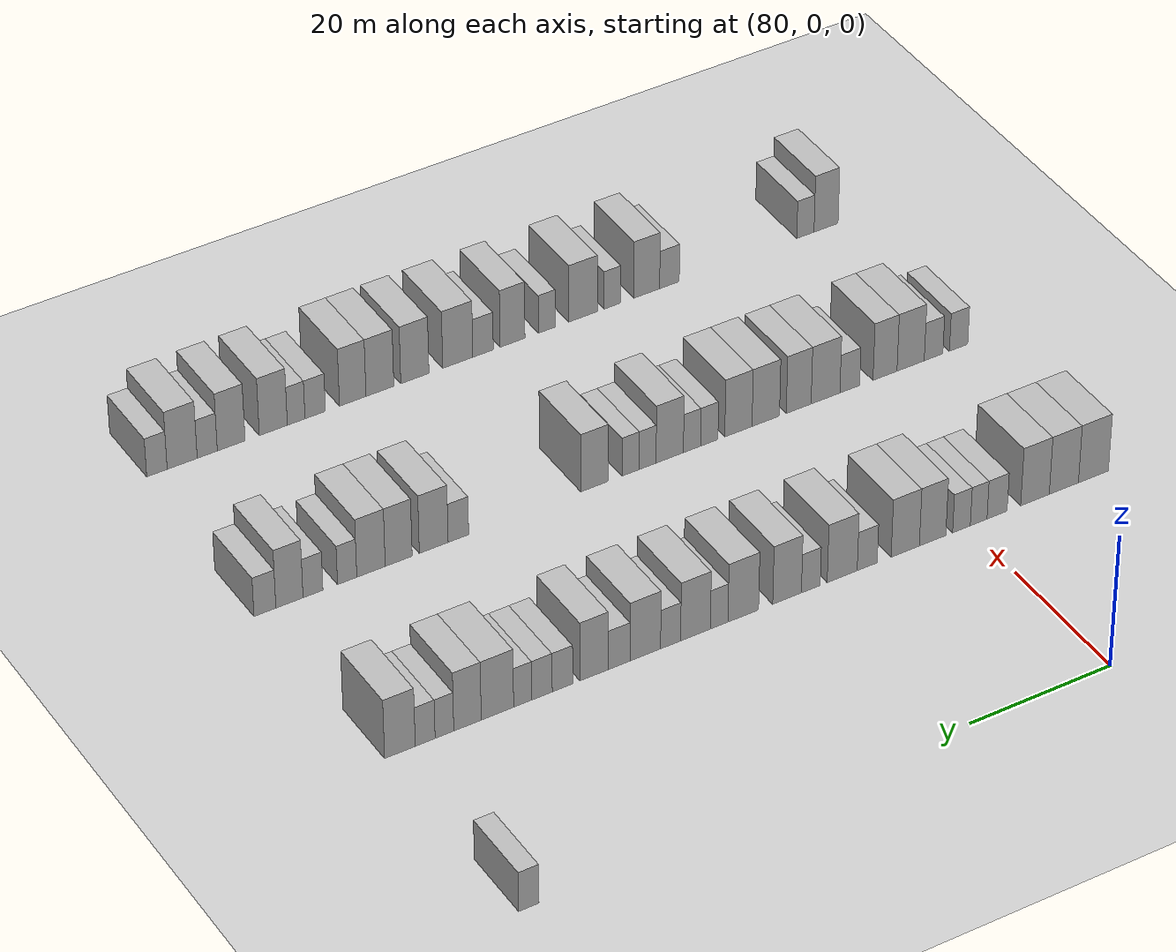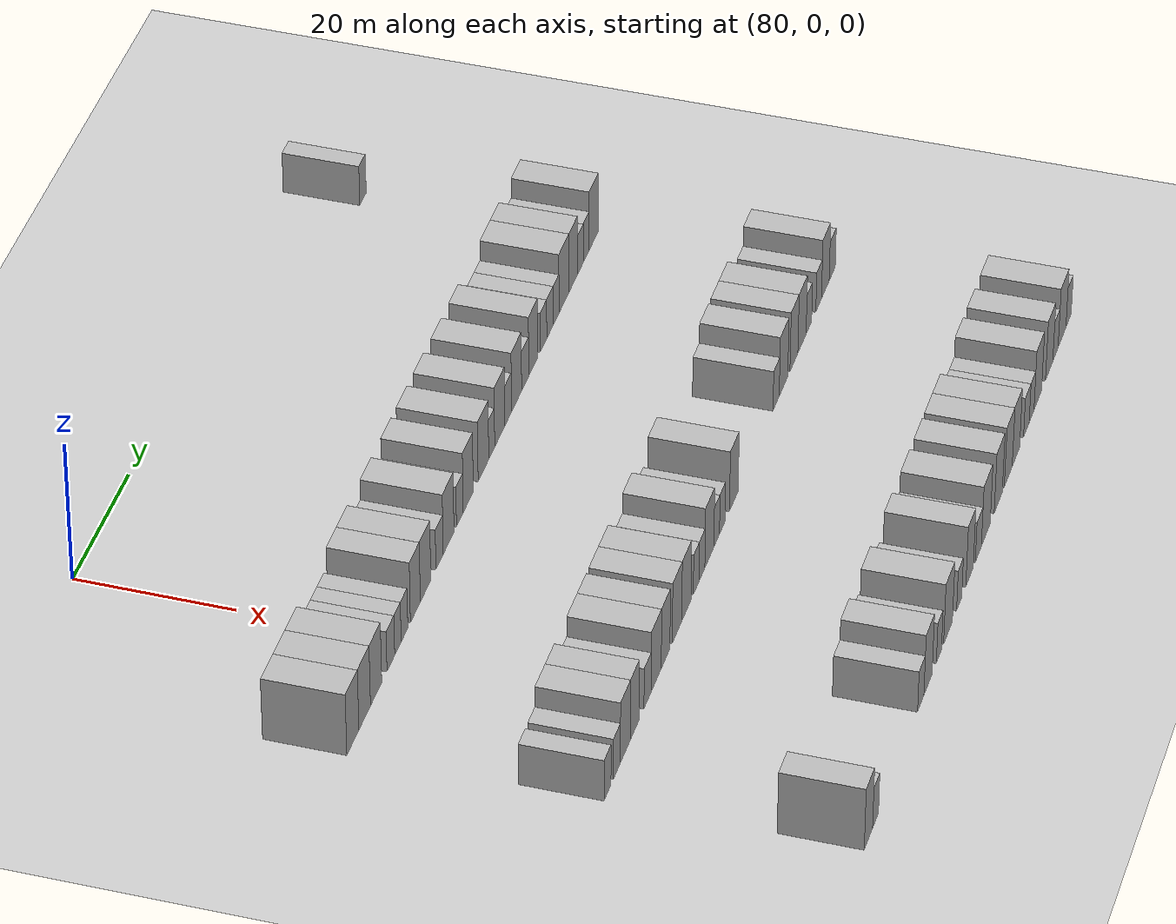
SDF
<sdf version="1.6">
 <world name="default">
  <include>
   <name>ground_plane_2</name>
   <uri>model://HANNAS_ground_plane</uri>
   <pose>100 0 0  0 0 0</pose>
  </include>
  <model name="building_577">
   <static>1</static>
   <pose>85.0000 79.6318 0 0.000000 0.000000 0.000000</pose>
   <link name="link">
    <pose>0 0 3.00 0 0 0</pose>
    <collision name="collision"><geometry><box><size>10.0000 2.6486 6.0000</size></box></geometry></collision>
    <visual name="visual">
     <cast_shadows>0</cast_shadows>
     <geometry><box><size>10.0000 2.6486 6.0000</size></box></geometry>
     <material>
      <script>
       <uri>model://HANNAS_wall/materials/scripts</uri>
       <uri>model://HANNAS_wall/materials/textures</uri>
       <name>vrc/HANNAS_wall</name>
      </script>
     </material>
    </visual>
   </link>
  </model>
  <model name="building_785">
   <static>1</static>
   <pose>115.0000 -18.4656 0 0.000000 0.000000 0.000000</pose>
   <link name="link">
    <pose>0 0 4.50 0 0 0</pose>
    <collision name="collision"><geometry><box><size>10.0000 4.4805 9.0000</size></box></geometry></collision>
    <visual name="visual">
     <cast_shadows>0</cast_shadows>
     <geometry><box><size>10.0000 4.4805 9.0000</size></box></geometry>
     <material>
      <script>
       <uri>model://HANNAS_wall/materials/scripts</uri>
       <uri>model://HANNAS_wall/materials/textures</uri>
       <name>vrc/HANNAS_wall</name>
      </script>
     </material>
    </visual>
   </link>
  </model>
  <model name="building_786">
   <static>1</static>
   <pose>115.0000 -14.0532 0 0.000000 0.000000 0.000000</pose>
   <link name="link">
    <pose>0 0 4.50 0 0 0</pose>
    <collision name="collision"><geometry><box><size>10.0000 4.3443 9.0000</size></box></geometry></collision>
    <visual name="visual">
     <cast_shadows>0</cast_shadows>
     <geometry><box><size>10.0000 4.3443 9.0000</size></box></geometry>
     <material>
      <script>
       <uri>model://HANNAS_wall/materials/scripts</uri>
       <uri>model://HANNAS_wall/materials/textures</uri>
       <name>vrc/HANNAS_wall</name>
      </script>
     </material>
    </visual>
   </link>
  </model>
  <model name="building_787">
   <static>1</static>
   <pose>115.0000 -9.7613 0 0.000000 0.000000 0.000000</pose>
   <link name="link">
    <pose>0 0 4.50 0 0 0</pose>
    <collision name="collision"><geometry><box><size>10.0000 4.2395 9.0000</size></box></geometry></collision>
    <visual name="visual">
     <cast_shadows>0</cast_shadows>
     <geometry><box><size>10.0000 4.2395 9.0000</size></box></geometry>
     <material>
      <script>
       <uri>model://HANNAS_wall/materials/scripts</uri>
       <uri>model://HANNAS_wall/materials/textures</uri>
       <name>vrc/HANNAS_wall</name>
      </script>
     </material>
    </visual>
   </link>
  </model>
  <model name="building_788">
   <static>1</static>
   <pose>115.0000 -4.1615 0 0.000000 0.000000 0.000000</pose>
   <link name="link">
    <pose>0 0 3.00 0 0 0</pose>
    <collision name="collision"><geometry><box><size>10.0000 2.9599 6.0000</size></box></geometry></collision>
    <visual name="visual">
     <cast_shadows>0</cast_shadows>
     <geometry><box><size>10.0000 2.9599 6.0000</size></box></geometry>
     <material>
      <script>
       <uri>model://HANNAS_wall/materials/scripts</uri>
       <uri>model://HANNAS_wall/materials/textures</uri>
       <name>vrc/HANNAS_wall</name>
      </script>
     </material>
    </visual>
   </link>
  </model>
  <model name="building_789">
   <static>1</static>
   <pose>115.0000 -1.4543 0 0.000000 0.000000 0.000000</pose>
   <link name="link">
    <pose>0 0 3.00 0 0 0</pose>
    <collision name="collision"><geometry><box><size>10.0000 2.4546 6.0000</size></box></geometry></collision>
    <visual name="visual">
     <cast_shadows>0</cast_shadows>
     <geometry><box><size>10.0000 2.4546 6.0000</size></box></geometry>
     <material>
      <script>
       <uri>model://HANNAS_wall/materials/scripts</uri>
       <uri>model://HANNAS_wall/materials/textures</uri>
       <name>vrc/HANNAS_wall</name>
      </script>
     </material>
    </visual>
   </link>
  </model>
  <model name="building_790">
   <static>1</static>
   <pose>115.0000 1.0651 0 0.000000 0.000000 0.000000</pose>
   <link name="link">
    <pose>0 0 3.00 0 0 0</pose>
    <collision name="collision"><geometry><box><size>10.0000 2.5842 6.0000</size></box></geometry></collision>
    <visual name="visual">
     <cast_shadows>0</cast_shadows>
     <geometry><box><size>10.0000 2.5842 6.0000</size></box></geometry>
     <material>
      <script>
       <uri>model://HANNAS_wall/materials/scripts</uri>
       <uri>model://HANNAS_wall/materials/textures</uri>
       <name>vrc/HANNAS_wall</name>
      </script>
     </material>
    </visual>
   </link>
  </model>
  <model name="building_791">
   <static>1</static>
   <pose>115.0000 5.2829 0 0.000000 0.000000 0.000000</pose>
   <link name="link">
    <pose>0 0 4.50 0 0 0</pose>
    <collision name="collision"><geometry><box><size>10.0000 3.8512 9.0000</size></box></geometry></collision>
    <visual name="visual">
     <cast_shadows>0</cast_shadows>
     <geometry><box><size>10.0000 3.8512 9.0000</size></box></geometry>
     <material>
      <script>
       <uri>model://HANNAS_wall/materials/scripts</uri>
       <uri>model://HANNAS_wall/materials/textures</uri>
       <name>vrc/HANNAS_wall</name>
      </script>
     </material>
    </visual>
   </link>
  </model>
  <model name="building_792">
   <static>1</static>
   <pose>115.0000 9.2549 0 0.000000 0.000000 0.000000</pose>
   <link name="link">
    <pose>0 0 4.50 0 0 0</pose>
    <collision name="collision"><geometry><box><size>10.0000 4.0929 9.0000</size></box></geometry></collision>
    <visual name="visual">
     <cast_shadows>0</cast_shadows>
     <geometry><box><size>10.0000 4.0929 9.0000</size></box></geometry>
     <material>
      <script>
       <uri>model://HANNAS_wall/materials/scripts</uri>
       <uri>model://HANNAS_wall/materials/textures</uri>
       <name>vrc/HANNAS_wall</name>
      </script>
     </material>
    </visual>
   </link>
  </model>
  <model name="building_793">
   <static>1</static>
   <pose>115.0000 14.7451 0 0.000000 0.000000 0.000000</pose>
   <link name="link">
    <pose>0 0 3.00 0 0 0</pose>
    <collision name="collision"><geometry><box><size>10.0000 2.8875 6.0000</size></box></geometry></collision>
    <visual name="visual">
     <cast_shadows>0</cast_shadows>
     <geometry><box><size>10.0000 2.8875 6.0000</size></box></geometry>
     <material>
      <script>
       <uri>model://HANNAS_wall/materials/scripts</uri>
       <uri>model://HANNAS_wall/materials/textures</uri>
       <name>vrc/HANNAS_wall</name>
      </script>
     </material>
    </visual>
   </link>
  </model>
  <model name="building_794">
   <static>1</static>
   <pose>115.0000 18.3385 0 0.000000 0.000000 0.000000</pose>
   <link name="link">
    <pose>0 0 4.50 0 0 0</pose>
    <collision name="collision"><geometry><box><size>10.0000 4.2994 9.0000</size></box></geometry></collision>
    <visual name="visual">
     <cast_shadows>0</cast_shadows>
     <geometry><box><size>10.0000 4.2994 9.0000</size></box></geometry>
     <material>
      <script>
       <uri>model://HANNAS_wall/materials/scripts</uri>
       <uri>model://HANNAS_wall/materials/textures</uri>
       <name>vrc/HANNAS_wall</name>
      </script>
     </material>
    </visual>
   </link>
  </model>
  <model name="building_795">
   <static>1</static>
   <pose>115.0000 22.8288 0 0.000000 0.000000 0.000000</pose>
   <link name="link">
    <pose>0 0 3.00 0 0 0</pose>
    <collision name="collision"><geometry><box><size>10.0000 2.6811 6.0000</size></box></geometry></collision>
    <visual name="visual">
     <cast_shadows>0</cast_shadows>
     <geometry><box><size>10.0000 2.6811 6.0000</size></box></geometry>
     <material>
      <script>
       <uri>model://HANNAS_wall/materials/scripts</uri>
       <uri>model://HANNAS_wall/materials/textures</uri>
       <name>vrc/HANNAS_wall</name>
      </script>
     </material>
    </visual>
   </link>
  </model>
  <model name="building_796">
   <static>1</static>
   <pose>115.0000 26.2020 0 0.000000 0.000000 0.000000</pose>
   <link name="link">
    <pose>0 0 4.50 0 0 0</pose>
    <collision name="collision"><geometry><box><size>10.0000 4.0654 9.0000</size></box></geometry></collision>
    <visual name="visual">
     <cast_shadows>0</cast_shadows>
     <geometry><box><size>10.0000 4.0654 9.0000</size></box></geometry>
     <material>
      <script>
       <uri>model://HANNAS_wall/materials/scripts</uri>
       <uri>model://HANNAS_wall/materials/textures</uri>
       <name>vrc/HANNAS_wall</name>
      </script>
     </material>
    </visual>
   </link>
  </model>
  <model name="building_797">
   <static>1</static>
   <pose>115.0000 32.3905 0 0.000000 0.000000 0.000000</pose>
   <link name="link">
    <pose>0 0 4.50 0 0 0</pose>
    <collision name="collision"><geometry><box><size>10.0000 4.3115 9.0000</size></box></geometry></collision>
    <visual name="visual">
     <cast_shadows>0</cast_shadows>
     <geometry><box><size>10.0000 4.3115 9.0000</size></box></geometry>
     <material>
      <script>
       <uri>model://HANNAS_wall/materials/scripts</uri>
       <uri>model://HANNAS_wall/materials/textures</uri>
       <name>vrc/HANNAS_wall</name>
      </script>
     </material>
    </visual>
   </link>
  </model>
  <model name="building_798">
   <static>1</static>
   <pose>115.0000 35.7782 0 0.000000 0.000000 0.000000</pose>
   <link name="link">
    <pose>0 0 3.00 0 0 0</pose>
    <collision name="collision"><geometry><box><size>10.0000 2.4639 6.0000</size></box></geometry></collision>
    <visual name="visual">
     <cast_shadows>0</cast_shadows>
     <geometry><box><size>10.0000 2.4639 6.0000</size></box></geometry>
     <material>
      <script>
       <uri>model://HANNAS_wall/materials/scripts</uri>
       <uri>model://HANNAS_wall/materials/textures</uri>
       <name>vrc/HANNAS_wall</name>
      </script>
     </material>
    </visual>
   </link>
  </model>
  <model name="building_799">
   <static>1</static>
   <pose>115.0000 39.0899 0 0.000000 0.000000 0.000000</pose>
   <link name="link">
    <pose>0 0 4.50 0 0 0</pose>
    <collision name="collision"><geometry><box><size>10.0000 4.1594 9.0000</size></box></geometry></collision>
    <visual name="visual">
     <cast_shadows>0</cast_shadows>
     <geometry><box><size>10.0000 4.1594 9.0000</size></box></geometry>
     <material>
      <script>
       <uri>model://HANNAS_wall/materials/scripts</uri>
       <uri>model://HANNAS_wall/materials/textures</uri>
       <name>vrc/HANNAS_wall</name>
      </script>
     </material>
    </visual>
   </link>
  </model>
  <model name="building_800">
   <static>1</static>
   <pose>115.0000 42.5646 0 0.000000 0.000000 0.000000</pose>
   <link name="link">
    <pose>0 0 3.00 0 0 0</pose>
    <collision name="collision"><geometry><box><size>10.0000 2.7901 6.0000</size></box></geometry></collision>
    <visual name="visual">
     <cast_shadows>0</cast_shadows>
     <geometry><box><size>10.0000 2.7901 6.0000</size></box></geometry>
     <material>
      <script>
       <uri>model://HANNAS_wall/materials/scripts</uri>
       <uri>model://HANNAS_wall/materials/textures</uri>
       <name>vrc/HANNAS_wall</name>
      </script>
     </material>
    </visual>
   </link>
  </model>
  <model name="building_801">
   <static>1</static>
   <pose>115.0000 46.0817 0 0.000000 0.000000 0.000000</pose>
   <link name="link">
    <pose>0 0 4.50 0 0 0</pose>
    <collision name="collision"><geometry><box><size>10.0000 4.2441 9.0000</size></box></geometry></collision>
    <visual name="visual">
     <cast_shadows>0</cast_shadows>
     <geometry><box><size>10.0000 4.2441 9.0000</size></box></geometry>
     <material>
      <script>
       <uri>model://HANNAS_wall/materials/scripts</uri>
       <uri>model://HANNAS_wall/materials/textures</uri>
       <name>vrc/HANNAS_wall</name>
      </script>
     </material>
    </visual>
   </link>
  </model>
  <model name="building_802">
   <static>1</static>
   <pose>115.0000 49.7013 0 0.000000 0.000000 0.000000</pose>
   <link name="link">
    <pose>0 0 3.00 0 0 0</pose>
    <collision name="collision"><geometry><box><size>10.0000 2.9952 6.0000</size></box></geometry></collision>
    <visual name="visual">
     <cast_shadows>0</cast_shadows>
     <geometry><box><size>10.0000 2.9952 6.0000</size></box></geometry>
     <material>
      <script>
       <uri>model://HANNAS_wall/materials/scripts</uri>
       <uri>model://HANNAS_wall/materials/textures</uri>
       <name>vrc/HANNAS_wall</name>
      </script>
     </material>
    </visual>
   </link>
  </model>
  <model name="building_803">
   <static>1</static>
   <pose>115.0000 53.1401 0 0.000000 0.000000 0.000000</pose>
   <link name="link">
    <pose>0 0 4.50 0 0 0</pose>
    <collision name="collision"><geometry><box><size>10.0000 3.8824 9.0000</size></box></geometry></collision>
    <visual name="visual">
     <cast_shadows>0</cast_shadows>
     <geometry><box><size>10.0000 3.8824 9.0000</size></box></geometry>
     <material>
      <script>
       <uri>model://HANNAS_wall/materials/scripts</uri>
       <uri>model://HANNAS_wall/materials/textures</uri>
       <name>vrc/HANNAS_wall</name>
      </script>
     </material>
    </visual>
   </link>
  </model>
  <model name="building_804">
   <static>1</static>
   <pose>115.0000 57.4782 0 0.000000 0.000000 0.000000</pose>
   <link name="link">
    <pose>0 0 3.00 0 0 0</pose>
    <collision name="collision"><geometry><box><size>10.0000 2.7938 6.0000</size></box></geometry></collision>
    <visual name="visual">
     <cast_shadows>0</cast_shadows>
     <geometry><box><size>10.0000 2.7938 6.0000</size></box></geometry>
     <material>
      <script>
       <uri>model://HANNAS_wall/materials/scripts</uri>
       <uri>model://HANNAS_wall/materials/textures</uri>
       <name>vrc/HANNAS_wall</name>
      </script>
     </material>
    </visual>
   </link>
  </model>
  <model name="building_805">
   <static>1</static>
   <pose>115.0000 60.2609 0 0.000000 0.000000 0.000000</pose>
   <link name="link">
    <pose>0 0 3.00 0 0 0</pose>
    <collision name="collision"><geometry><box><size>10.0000 2.7716 6.0000</size></box></geometry></collision>
    <visual name="visual">
     <cast_shadows>0</cast_shadows>
     <geometry><box><size>10.0000 2.7716 6.0000</size></box></geometry>
     <material>
      <script>
       <uri>model://HANNAS_wall/materials/scripts</uri>
       <uri>model://HANNAS_wall/materials/textures</uri>
       <name>vrc/HANNAS_wall</name>
      </script>
     </material>
    </visual>
   </link>
  </model>
  <model name="building_806">
   <static>1</static>
   <pose>115.0000 62.8875 0 0.000000 0.000000 0.000000</pose>
   <link name="link">
    <pose>0 0 3.00 0 0 0</pose>
    <collision name="collision"><geometry><box><size>10.0000 2.4816 6.0000</size></box></geometry></collision>
    <visual name="visual">
     <cast_shadows>0</cast_shadows>
     <geometry><box><size>10.0000 2.4816 6.0000</size></box></geometry>
     <material>
      <script>
       <uri>model://HANNAS_wall/materials/scripts</uri>
       <uri>model://HANNAS_wall/materials/textures</uri>
       <name>vrc/HANNAS_wall</name>
      </script>
     </material>
    </visual>
   </link>
  </model>
  <model name="building_807">
   <static>1</static>
   <pose>115.0000 66.3173 0 0.000000 0.000000 0.000000</pose>
   <link name="link">
    <pose>0 0 4.50 0 0 0</pose>
    <collision name="collision"><geometry><box><size>10.0000 4.3781 9.0000</size></box></geometry></collision>
    <visual name="visual">
     <cast_shadows>0</cast_shadows>
     <geometry><box><size>10.0000 4.3781 9.0000</size></box></geometry>
     <material>
      <script>
       <uri>model://HANNAS_wall/materials/scripts</uri>
       <uri>model://HANNAS_wall/materials/textures</uri>
       <name>vrc/HANNAS_wall</name>
      </script>
     </material>
    </visual>
   </link>
  </model>
  <model name="building_808">
   <static>1</static>
   <pose>115.0000 70.3560 0 0.000000 0.000000 0.000000</pose>
   <link name="link">
    <pose>0 0 4.50 0 0 0</pose>
    <collision name="collision"><geometry><box><size>10.0000 3.6994 9.0000</size></box></geometry></collision>
    <visual name="visual">
     <cast_shadows>0</cast_shadows>
     <geometry><box><size>10.0000 3.6994 9.0000</size></box></geometry>
     <material>
      <script>
       <uri>model://HANNAS_wall/materials/scripts</uri>
       <uri>model://HANNAS_wall/materials/textures</uri>
       <name>vrc/HANNAS_wall</name>
      </script>
     </material>
    </visual>
   </link>
  </model>
  <model name="building_809">
   <static>1</static>
   <pose>115.0000 73.4542 0 0.000000 0.000000 0.000000</pose>
   <link name="link">
    <pose>0 0 3.00 0 0 0</pose>
    <collision name="collision"><geometry><box><size>10.0000 2.4970 6.0000</size></box></geometry></collision>
    <visual name="visual">
     <cast_shadows>0</cast_shadows>
     <geometry><box><size>10.0000 2.4970 6.0000</size></box></geometry>
     <material>
      <script>
       <uri>model://HANNAS_wall/materials/scripts</uri>
       <uri>model://HANNAS_wall/materials/textures</uri>
       <name>vrc/HANNAS_wall</name>
      </script>
     </material>
    </visual>
   </link>
  </model>
  <model name="building_810">
   <static>1</static>
   <pose>115.0000 76.0262 0 0.000000 0.000000 0.000000</pose>
   <link name="link">
    <pose>0 0 3.00 0 0 0</pose>
    <collision name="collision"><geometry><box><size>10.0000 2.6471 6.0000</size></box></geometry></collision>
    <visual name="visual">
     <cast_shadows>0</cast_shadows>
     <geometry><box><size>10.0000 2.6471 6.0000</size></box></geometry>
     <material>
      <script>
       <uri>model://HANNAS_wall/materials/scripts</uri>
       <uri>model://HANNAS_wall/materials/textures</uri>
       <name>vrc/HANNAS_wall</name>
      </script>
     </material>
    </visual>
   </link>
  </model>
  <model name="building_811">
   <static>1</static>
   <pose>115.0000 79.3881 0 0.000000 0.000000 0.000000</pose>
   <link name="link">
    <pose>0 0 4.50 0 0 0</pose>
    <collision name="collision"><geometry><box><size>10.0000 4.0766 9.0000</size></box></geometry></collision>
    <visual name="visual">
     <cast_shadows>0</cast_shadows>
     <geometry><box><size>10.0000 4.0766 9.0000</size></box></geometry>
     <material>
      <script>
       <uri>model://HANNAS_wall/materials/scripts</uri>
       <uri>model://HANNAS_wall/materials/textures</uri>
       <name>vrc/HANNAS_wall</name>
      </script>
     </material>
    </visual>
   </link>
  </model>
  <model name="building_1022">
   <static>1</static>
   <pose>145.0000 -18.6170 0 0.000000 0.000000 0.000000</pose>
   <link name="link">
    <pose>0 0 3.00 0 0 0</pose>
    <collision name="collision"><geometry><box><size>10.0000 2.7877 6.0000</size></box></geometry></collision>
    <visual name="visual">
     <cast_shadows>0</cast_shadows>
     <geometry><box><size>10.0000 2.7877 6.0000</size></box></geometry>
     <material>
      <script>
       <uri>model://HANNAS_wall/materials/scripts</uri>
       <uri>model://HANNAS_wall/materials/textures</uri>
       <name>vrc/HANNAS_wall</name>
      </script>
     </material>
    </visual>
   </link>
  </model>
  <model name="building_1023">
   <static>1</static>
   <pose>145.0000 -14.8101 0 0.000000 0.000000 0.000000</pose>
   <link name="link">
    <pose>0 0 3.00 0 0 0</pose>
    <collision name="collision"><geometry><box><size>10.0000 2.8262 6.0000</size></box></geometry></collision>
    <visual name="visual">
     <cast_shadows>0</cast_shadows>
     <geometry><box><size>10.0000 2.8262 6.0000</size></box></geometry>
     <material>
      <script>
       <uri>model://HANNAS_wall/materials/scripts</uri>
       <uri>model://HANNAS_wall/materials/textures</uri>
       <name>vrc/HANNAS_wall</name>
      </script>
     </material>
    </visual>
   </link>
  </model>
  <model name="building_1024">
   <static>1</static>
   <pose>145.0000 -11.3395 0 0.000000 0.000000 0.000000</pose>
   <link name="link">
    <pose>0 0 4.50 0 0 0</pose>
    <collision name="collision"><geometry><box><size>10.0000 4.1149 9.0000</size></box></geometry></collision>
    <visual name="visual">
     <cast_shadows>0</cast_shadows>
     <geometry><box><size>10.0000 4.1149 9.0000</size></box></geometry>
     <material>
      <script>
       <uri>model://HANNAS_wall/materials/scripts</uri>
       <uri>model://HANNAS_wall/materials/textures</uri>
       <name>vrc/HANNAS_wall</name>
      </script>
     </material>
    </visual>
   </link>
  </model>
  <model name="building_1025">
   <static>1</static>
   <pose>145.0000 -7.4739 0 0.000000 0.000000 0.000000</pose>
   <link name="link">
    <pose>0 0 4.50 0 0 0</pose>
    <collision name="collision"><geometry><box><size>10.0000 3.6163 9.0000</size></box></geometry></collision>
    <visual name="visual">
     <cast_shadows>0</cast_shadows>
     <geometry><box><size>10.0000 3.6163 9.0000</size></box></geometry>
     <material>
      <script>
       <uri>model://HANNAS_wall/materials/scripts</uri>
       <uri>model://HANNAS_wall/materials/textures</uri>
       <name>vrc/HANNAS_wall</name>
      </script>
     </material>
    </visual>
   </link>
  </model>
  <model name="building_1026">
   <static>1</static>
   <pose>145.0000 -2.1886 0 0.000000 0.000000 0.000000</pose>
   <link name="link">
    <pose>0 0 3.00 0 0 0</pose>
    <collision name="collision"><geometry><box><size>10.0000 2.9542 6.0000</size></box></geometry></collision>
    <visual name="visual">
     <cast_shadows>0</cast_shadows>
     <geometry><box><size>10.0000 2.9542 6.0000</size></box></geometry>
     <material>
      <script>
       <uri>model://HANNAS_wall/materials/scripts</uri>
       <uri>model://HANNAS_wall/materials/textures</uri>
       <name>vrc/HANNAS_wall</name>
      </script>
     </material>
    </visual>
   </link>
  </model>
  <model name="building_1027">
   <static>1</static>
   <pose>145.0000 1.4311 0 0.000000 0.000000 0.000000</pose>
   <link name="link">
    <pose>0 0 4.50 0 0 0</pose>
    <collision name="collision"><geometry><box><size>10.0000 4.2852 9.0000</size></box></geometry></collision>
    <visual name="visual">
     <cast_shadows>0</cast_shadows>
     <geometry><box><size>10.0000 4.2852 9.0000</size></box></geometry>
     <material>
      <script>
       <uri>model://HANNAS_wall/materials/scripts</uri>
       <uri>model://HANNAS_wall/materials/textures</uri>
       <name>vrc/HANNAS_wall</name>
      </script>
     </material>
    </visual>
   </link>
  </model>
  <model name="building_1028">
   <static>1</static>
   <pose>145.0000 5.4155 0 0.000000 0.000000 0.000000</pose>
   <link name="link">
    <pose>0 0 4.50 0 0 0</pose>
    <collision name="collision"><geometry><box><size>10.0000 3.6836 9.0000</size></box></geometry></collision>
    <visual name="visual">
     <cast_shadows>0</cast_shadows>
     <geometry><box><size>10.0000 3.6836 9.0000</size></box></geometry>
     <material>
      <script>
       <uri>model://HANNAS_wall/materials/scripts</uri>
       <uri>model://HANNAS_wall/materials/textures</uri>
       <name>vrc/HANNAS_wall</name>
      </script>
     </material>
    </visual>
   </link>
  </model>
  <model name="building_1029">
   <static>1</static>
   <pose>145.0000 10.2791 0 0.000000 0.000000 0.000000</pose>
   <link name="link">
    <pose>0 0 4.50 0 0 0</pose>
    <collision name="collision"><geometry><box><size>10.0000 4.0437 9.0000</size></box></geometry></collision>
    <visual name="visual">
     <cast_shadows>0</cast_shadows>
     <geometry><box><size>10.0000 4.0437 9.0000</size></box></geometry>
     <material>
      <script>
       <uri>model://HANNAS_wall/materials/scripts</uri>
       <uri>model://HANNAS_wall/materials/textures</uri>
       <name>vrc/HANNAS_wall</name>
      </script>
     </material>
    </visual>
   </link>
  </model>
  <model name="building_1030">
   <static>1</static>
   <pose>145.0000 14.2987 0 0.000000 0.000000 0.000000</pose>
   <link name="link">
    <pose>0 0 4.50 0 0 0</pose>
    <collision name="collision"><geometry><box><size>10.0000 3.9954 9.0000</size></box></geometry></collision>
    <visual name="visual">
     <cast_shadows>0</cast_shadows>
     <geometry><box><size>10.0000 3.9954 9.0000</size></box></geometry>
     <material>
      <script>
       <uri>model://HANNAS_wall/materials/scripts</uri>
       <uri>model://HANNAS_wall/materials/textures</uri>
       <name>vrc/HANNAS_wall</name>
      </script>
     </material>
    </visual>
   </link>
  </model>
  <model name="building_1031">
   <static>1</static>
   <pose>145.0000 18.5558 0 0.000000 0.000000 0.000000</pose>
   <link name="link">
    <pose>0 0 3.00 0 0 0</pose>
    <collision name="collision"><geometry><box><size>10.0000 2.5189 6.0000</size></box></geometry></collision>
    <visual name="visual">
     <cast_shadows>0</cast_shadows>
     <geometry><box><size>10.0000 2.5189 6.0000</size></box></geometry>
     <material>
      <script>
       <uri>model://HANNAS_wall/materials/scripts</uri>
       <uri>model://HANNAS_wall/materials/textures</uri>
       <name>vrc/HANNAS_wall</name>
      </script>
     </material>
    </visual>
   </link>
  </model>
  <model name="building_1032">
   <static>1</static>
   <pose>145.0000 21.0680 0 0.000000 0.000000 0.000000</pose>
   <link name="link">
    <pose>0 0 3.00 0 0 0</pose>
    <collision name="collision"><geometry><box><size>10.0000 2.5055 6.0000</size></box></geometry></collision>
    <visual name="visual">
     <cast_shadows>0</cast_shadows>
     <geometry><box><size>10.0000 2.5055 6.0000</size></box></geometry>
     <material>
      <script>
       <uri>model://HANNAS_wall/materials/scripts</uri>
       <uri>model://HANNAS_wall/materials/textures</uri>
       <name>vrc/HANNAS_wall</name>
      </script>
     </material>
    </visual>
   </link>
  </model>
  <model name="building_1033">
   <static>1</static>
   <pose>145.0000 24.3021 0 0.000000 0.000000 0.000000</pose>
   <link name="link">
    <pose>0 0 4.50 0 0 0</pose>
    <collision name="collision"><geometry><box><size>10.0000 3.9626 9.0000</size></box></geometry></collision>
    <visual name="visual">
     <cast_shadows>0</cast_shadows>
     <geometry><box><size>10.0000 3.9626 9.0000</size></box></geometry>
     <material>
      <script>
       <uri>model://HANNAS_wall/materials/scripts</uri>
       <uri>model://HANNAS_wall/materials/textures</uri>
       <name>vrc/HANNAS_wall</name>
      </script>
     </material>
    </visual>
   </link>
  </model>
  <model name="building_1034">
   <static>1</static>
   <pose>145.0000 27.5177 0 0.000000 0.000000 0.000000</pose>
   <link name="link">
    <pose>0 0 3.00 0 0 0</pose>
    <collision name="collision"><geometry><box><size>10.0000 2.4688 6.0000</size></box></geometry></collision>
    <visual name="visual">
     <cast_shadows>0</cast_shadows>
     <geometry><box><size>10.0000 2.4688 6.0000</size></box></geometry>
     <material>
      <script>
       <uri>model://HANNAS_wall/materials/scripts</uri>
       <uri>model://HANNAS_wall/materials/textures</uri>
       <name>vrc/HANNAS_wall</name>
      </script>
     </material>
    </visual>
   </link>
  </model>
  <model name="building_1035">
   <static>1</static>
   <pose>145.0000 29.9783 0 0.000000 0.000000 0.000000</pose>
   <link name="link">
    <pose>0 0 3.00 0 0 0</pose>
    <collision name="collision"><geometry><box><size>10.0000 2.4523 6.0000</size></box></geometry></collision>
    <visual name="visual">
     <cast_shadows>0</cast_shadows>
     <geometry><box><size>10.0000 2.4523 6.0000</size></box></geometry>
     <material>
      <script>
       <uri>model://HANNAS_wall/materials/scripts</uri>
       <uri>model://HANNAS_wall/materials/textures</uri>
       <name>vrc/HANNAS_wall</name>
      </script>
     </material>
    </visual>
   </link>
  </model>
  <model name="building_1036">
   <static>1</static>
   <pose>145.0000 35.1551 0 0.000000 0.000000 0.000000</pose>
   <link name="link">
    <pose>0 0 4.50 0 0 0</pose>
    <collision name="collision"><geometry><box><size>10.0000 3.9015 9.0000</size></box></geometry></collision>
    <visual name="visual">
     <cast_shadows>0</cast_shadows>
     <geometry><box><size>10.0000 3.9015 9.0000</size></box></geometry>
     <material>
      <script>
       <uri>model://HANNAS_wall/materials/scripts</uri>
       <uri>model://HANNAS_wall/materials/textures</uri>
       <name>vrc/HANNAS_wall</name>
      </script>
     </material>
    </visual>
   </link>
  </model>
  <model name="building_1037">
   <static>1</static>
   <pose>145.0000 54.4081 0 0.000000 0.000000 0.000000</pose>
   <link name="link">
    <pose>0 0 3.00 0 0 0</pose>
    <collision name="collision"><geometry><box><size>10.0000 2.8682 6.0000</size></box></geometry></collision>
    <visual name="visual">
     <cast_shadows>0</cast_shadows>
     <geometry><box><size>10.0000 2.8682 6.0000</size></box></geometry>
     <material>
      <script>
       <uri>model://HANNAS_wall/materials/scripts</uri>
       <uri>model://HANNAS_wall/materials/textures</uri>
       <name>vrc/HANNAS_wall</name>
      </script>
     </material>
    </visual>
   </link>
  </model>
  <model name="building_1038">
   <static>1</static>
   <pose>145.0000 57.8488 0 0.000000 0.000000 0.000000</pose>
   <link name="link">
    <pose>0 0 4.50 0 0 0</pose>
    <collision name="collision"><geometry><box><size>10.0000 4.0132 9.0000</size></box></geometry></collision>
    <visual name="visual">
     <cast_shadows>0</cast_shadows>
     <geometry><box><size>10.0000 4.0132 9.0000</size></box></geometry>
     <material>
      <script>
       <uri>model://HANNAS_wall/materials/scripts</uri>
       <uri>model://HANNAS_wall/materials/textures</uri>
       <name>vrc/HANNAS_wall</name>
      </script>
     </material>
    </visual>
   </link>
  </model>
  <model name="building_1039">
   <static>1</static>
   <pose>145.0000 62.7180 0 0.000000 0.000000 0.000000</pose>
   <link name="link">
    <pose>0 0 4.50 0 0 0</pose>
    <collision name="collision"><geometry><box><size>10.0000 3.7253 9.0000</size></box></geometry></collision>
    <visual name="visual">
     <cast_shadows>0</cast_shadows>
     <geometry><box><size>10.0000 3.7253 9.0000</size></box></geometry>
     <material>
      <script>
       <uri>model://HANNAS_wall/materials/scripts</uri>
       <uri>model://HANNAS_wall/materials/textures</uri>
       <name>vrc/HANNAS_wall</name>
      </script>
     </material>
    </visual>
   </link>
  </model>
  <model name="building_1040">
   <static>1</static>
   <pose>145.0000 66.5427 0 0.000000 0.000000 0.000000</pose>
   <link name="link">
    <pose>0 0 4.50 0 0 0</pose>
    <collision name="collision"><geometry><box><size>10.0000 3.9241 9.0000</size></box></geometry></collision>
    <visual name="visual">
     <cast_shadows>0</cast_shadows>
     <geometry><box><size>10.0000 3.9241 9.0000</size></box></geometry>
     <material>
      <script>
       <uri>model://HANNAS_wall/materials/scripts</uri>
       <uri>model://HANNAS_wall/materials/textures</uri>
       <name>vrc/HANNAS_wall</name>
      </script>
     </material>
    </visual>
   </link>
  </model>
  <model name="building_1041">
   <static>1</static>
   <pose>145.0000 69.8257 0 0.000000 0.000000 0.000000</pose>
   <link name="link">
    <pose>0 0 3.00 0 0 0</pose>
    <collision name="collision"><geometry><box><size>10.0000 2.6420 6.0000</size></box></geometry></collision>
    <visual name="visual">
     <cast_shadows>0</cast_shadows>
     <geometry><box><size>10.0000 2.6420 6.0000</size></box></geometry>
     <material>
      <script>
       <uri>model://HANNAS_wall/materials/scripts</uri>
       <uri>model://HANNAS_wall/materials/textures</uri>
       <name>vrc/HANNAS_wall</name>
      </script>
     </material>
    </visual>
   </link>
  </model>
  <model name="building_1042">
   <static>1</static>
   <pose>145.0000 74.5040 0 0.000000 0.000000 0.000000</pose>
   <link name="link">
    <pose>0 0 3.00 0 0 0</pose>
    <collision name="collision"><geometry><box><size>10.0000 2.7146 6.0000</size></box></geometry></collision>
    <visual name="visual">
     <cast_shadows>0</cast_shadows>
     <geometry><box><size>10.0000 2.7146 6.0000</size></box></geometry>
     <material>
      <script>
       <uri>model://HANNAS_wall/materials/scripts</uri>
       <uri>model://HANNAS_wall/materials/textures</uri>
       <name>vrc/HANNAS_wall</name>
      </script>
     </material>
    </visual>
   </link>
  </model>
  <model name="building_1043">
   <static>1</static>
   <pose>145.0000 77.7118 0 0.000000 0.000000 0.000000</pose>
   <link name="link">
    <pose>0 0 4.50 0 0 0</pose>
    <collision name="collision"><geometry><box><size>10.0000 3.7009 9.0000</size></box></geometry></collision>
    <visual name="visual">
     <cast_shadows>0</cast_shadows>
     <geometry><box><size>10.0000 3.7009 9.0000</size></box></geometry>
     <material>
      <script>
       <uri>model://HANNAS_wall/materials/scripts</uri>
       <uri>model://HANNAS_wall/materials/textures</uri>
       <name>vrc/HANNAS_wall</name>
      </script>
     </material>
    </visual>
   </link>
  </model>
  <model name="building_1044">
   <static>1</static>
   <pose>145.0000 81.0450 0 0.000000 0.000000 0.000000</pose>
   <link name="link">
    <pose>0 0 3.00 0 0 0</pose>
    <collision name="collision"><geometry><box><size>10.0000 2.9656 6.0000</size></box></geometry></collision>
    <visual name="visual">
     <cast_shadows>0</cast_shadows>
     <geometry><box><size>10.0000 2.9656 6.0000</size></box></geometry>
     <material>
      <script>
       <uri>model://HANNAS_wall/materials/scripts</uri>
       <uri>model://HANNAS_wall/materials/textures</uri>
       <name>vrc/HANNAS_wall</name>
      </script>
     </material>
    </visual>
   </link>
  </model>
  <model name="building_1243">
   <static>1</static>
   <pose>175.0000 -17.9505 0 0.000000 0.000000 0.000000</pose>
   <link name="link">
    <pose>0 0 4.50 0 0 0</pose>
    <collision name="collision"><geometry><box><size>10.0000 3.7191 9.0000</size></box></geometry></collision>
    <visual name="visual">
     <cast_shadows>0</cast_shadows>
     <geometry><box><size>10.0000 3.7191 9.0000</size></box></geometry>
     <material>
      <script>
       <uri>model://HANNAS_wall/materials/scripts</uri>
       <uri>model://HANNAS_wall/materials/textures</uri>
       <name>vrc/HANNAS_wall</name>
      </script>
     </material>
    </visual>
   </link>
  </model>
  <model name="building_1244">
   <static>1</static>
   <pose>175.0000 -14.7631 0 0.000000 0.000000 0.000000</pose>
   <link name="link">
    <pose>0 0 3.00 0 0 0</pose>
    <collision name="collision"><geometry><box><size>10.0000 2.6557 6.0000</size></box></geometry></collision>
    <visual name="visual">
     <cast_shadows>0</cast_shadows>
     <geometry><box><size>10.0000 2.6557 6.0000</size></box></geometry>
     <material>
      <script>
       <uri>model://HANNAS_wall/materials/scripts</uri>
       <uri>model://HANNAS_wall/materials/textures</uri>
       <name>vrc/HANNAS_wall</name>
      </script>
     </material>
    </visual>
   </link>
  </model>
  <model name="building_1245">
   <static>1</static>
   <pose>175.0000 5.9738 0 0.000000 0.000000 0.000000</pose>
   <link name="link">
    <pose>0 0 3.00 0 0 0</pose>
    <collision name="collision"><geometry><box><size>10.0000 2.9394 6.0000</size></box></geometry></collision>
    <visual name="visual">
     <cast_shadows>0</cast_shadows>
     <geometry><box><size>10.0000 2.9394 6.0000</size></box></geometry>
     <material>
      <script>
       <uri>model://HANNAS_wall/materials/scripts</uri>
       <uri>model://HANNAS_wall/materials/textures</uri>
       <name>vrc/HANNAS_wall</name>
      </script>
     </material>
    </visual>
   </link>
  </model>
  <model name="building_1246">
   <static>1</static>
   <pose>175.0000 9.3850 0 0.000000 0.000000 0.000000</pose>
   <link name="link">
    <pose>0 0 4.50 0 0 0</pose>
    <collision name="collision"><geometry><box><size>10.0000 3.8830 9.0000</size></box></geometry></collision>
    <visual name="visual">
     <cast_shadows>0</cast_shadows>
     <geometry><box><size>10.0000 3.8830 9.0000</size></box></geometry>
     <material>
      <script>
       <uri>model://HANNAS_wall/materials/scripts</uri>
       <uri>model://HANNAS_wall/materials/textures</uri>
       <name>vrc/HANNAS_wall</name>
      </script>
     </material>
    </visual>
   </link>
  </model>
  <model name="building_1247">
   <static>1</static>
   <pose>175.0000 14.5475 0 0.000000 0.000000 0.000000</pose>
   <link name="link">
    <pose>0 0 3.00 0 0 0</pose>
    <collision name="collision"><geometry><box><size>10.0000 2.4421 6.0000</size></box></geometry></collision>
    <visual name="visual">
     <cast_shadows>0</cast_shadows>
     <geometry><box><size>10.0000 2.4421 6.0000</size></box></geometry>
     <material>
      <script>
       <uri>model://HANNAS_wall/materials/scripts</uri>
       <uri>model://HANNAS_wall/materials/textures</uri>
       <name>vrc/HANNAS_wall</name>
      </script>
     </material>
    </visual>
   </link>
  </model>
  <model name="building_1248">
   <static>1</static>
   <pose>175.0000 18.8928 0 0.000000 0.000000 0.000000</pose>
   <link name="link">
    <pose>0 0 4.50 0 0 0</pose>
    <collision name="collision"><geometry><box><size>10.0000 4.2485 9.0000</size></box></geometry></collision>
    <visual name="visual">
     <cast_shadows>0</cast_shadows>
     <geometry><box><size>10.0000 4.2485 9.0000</size></box></geometry>
     <material>
      <script>
       <uri>model://HANNAS_wall/materials/scripts</uri>
       <uri>model://HANNAS_wall/materials/textures</uri>
       <name>vrc/HANNAS_wall</name>
      </script>
     </material>
    </visual>
   </link>
  </model>
  <model name="building_1249">
   <static>1</static>
   <pose>175.0000 24.2601 0 0.000000 0.000000 0.000000</pose>
   <link name="link">
    <pose>0 0 3.00 0 0 0</pose>
    <collision name="collision"><geometry><box><size>10.0000 2.4860 6.0000</size></box></geometry></collision>
    <visual name="visual">
     <cast_shadows>0</cast_shadows>
     <geometry><box><size>10.0000 2.4860 6.0000</size></box></geometry>
     <material>
      <script>
       <uri>model://HANNAS_wall/materials/scripts</uri>
       <uri>model://HANNAS_wall/materials/textures</uri>
       <name>vrc/HANNAS_wall</name>
      </script>
     </material>
    </visual>
   </link>
  </model>
  <model name="building_1250">
   <static>1</static>
   <pose>175.0000 29.3243 0 0.000000 0.000000 0.000000</pose>
   <link name="link">
    <pose>0 0 4.50 0 0 0</pose>
    <collision name="collision"><geometry><box><size>10.0000 3.6424 9.0000</size></box></geometry></collision>
    <visual name="visual">
     <cast_shadows>0</cast_shadows>
     <geometry><box><size>10.0000 3.6424 9.0000</size></box></geometry>
     <material>
      <script>
       <uri>model://HANNAS_wall/materials/scripts</uri>
       <uri>model://HANNAS_wall/materials/textures</uri>
       <name>vrc/HANNAS_wall</name>
      </script>
     </material>
    </visual>
   </link>
  </model>
  <model name="building_1251">
   <static>1</static>
   <pose>175.0000 33.6427 0 0.000000 0.000000 0.000000</pose>
   <link name="link">
    <pose>0 0 3.00 0 0 0</pose>
    <collision name="collision"><geometry><box><size>10.0000 2.9944 6.0000</size></box></geometry></collision>
    <visual name="visual">
     <cast_shadows>0</cast_shadows>
     <geometry><box><size>10.0000 2.9944 6.0000</size></box></geometry>
     <material>
      <script>
       <uri>model://HANNAS_wall/materials/scripts</uri>
       <uri>model://HANNAS_wall/materials/textures</uri>
       <name>vrc/HANNAS_wall</name>
      </script>
     </material>
    </visual>
   </link>
  </model>
  <model name="building_1252">
   <static>1</static>
   <pose>175.0000 37.3278 0 0.000000 0.000000 0.000000</pose>
   <link name="link">
    <pose>0 0 4.50 0 0 0</pose>
    <collision name="collision"><geometry><box><size>10.0000 4.3758 9.0000</size></box></geometry></collision>
    <visual name="visual">
     <cast_shadows>0</cast_shadows>
     <geometry><box><size>10.0000 4.3758 9.0000</size></box></geometry>
     <material>
      <script>
       <uri>model://HANNAS_wall/materials/scripts</uri>
       <uri>model://HANNAS_wall/materials/textures</uri>
       <name>vrc/HANNAS_wall</name>
      </script>
     </material>
    </visual>
   </link>
  </model>
  <model name="building_1253">
   <static>1</static>
   <pose>175.0000 43.5479 0 0.000000 0.000000 0.000000</pose>
   <link name="link">
    <pose>0 0 4.50 0 0 0</pose>
    <collision name="collision"><geometry><box><size>10.0000 4.0644 9.0000</size></box></geometry></collision>
    <visual name="visual">
     <cast_shadows>0</cast_shadows>
     <geometry><box><size>10.0000 4.0644 9.0000</size></box></geometry>
     <material>
      <script>
       <uri>model://HANNAS_wall/materials/scripts</uri>
       <uri>model://HANNAS_wall/materials/textures</uri>
       <name>vrc/HANNAS_wall</name>
      </script>
     </material>
    </visual>
   </link>
  </model>
  <model name="building_1254">
   <static>1</static>
   <pose>175.0000 48.5783 0 0.000000 0.000000 0.000000</pose>
   <link name="link">
    <pose>0 0 4.50 0 0 0</pose>
    <collision name="collision"><geometry><box><size>10.0000 3.9965 9.0000</size></box></geometry></collision>
    <visual name="visual">
     <cast_shadows>0</cast_shadows>
     <geometry><box><size>10.0000 3.9965 9.0000</size></box></geometry>
     <material>
      <script>
       <uri>model://HANNAS_wall/materials/scripts</uri>
       <uri>model://HANNAS_wall/materials/textures</uri>
       <name>vrc/HANNAS_wall</name>
      </script>
     </material>
    </visual>
   </link>
  </model>
  <model name="building_1255">
   <static>1</static>
   <pose>175.0000 52.4714 0 0.000000 0.000000 0.000000</pose>
   <link name="link">
    <pose>0 0 4.50 0 0 0</pose>
    <collision name="collision"><geometry><box><size>10.0000 3.7897 9.0000</size></box></geometry></collision>
    <visual name="visual">
     <cast_shadows>0</cast_shadows>
     <geometry><box><size>10.0000 3.7897 9.0000</size></box></geometry>
     <material>
      <script>
       <uri>model://HANNAS_wall/materials/scripts</uri>
       <uri>model://HANNAS_wall/materials/textures</uri>
       <name>vrc/HANNAS_wall</name>
      </script>
     </material>
    </visual>
   </link>
  </model>
  <model name="building_1256">
   <static>1</static>
   <pose>175.0000 57.8211 0 0.000000 0.000000 0.000000</pose>
   <link name="link">
    <pose>0 0 3.00 0 0 0</pose>
    <collision name="collision"><geometry><box><size>10.0000 2.9096 6.0000</size></box></geometry></collision>
    <visual name="visual">
     <cast_shadows>0</cast_shadows>
     <geometry><box><size>10.0000 2.9096 6.0000</size></box></geometry>
     <material>
      <script>
       <uri>model://HANNAS_wall/materials/scripts</uri>
       <uri>model://HANNAS_wall/materials/textures</uri>
       <name>vrc/HANNAS_wall</name>
      </script>
     </material>
    </visual>
   </link>
  </model>
  <model name="building_1257">
   <static>1</static>
   <pose>175.0000 60.5266 0 0.000000 0.000000 0.000000</pose>
   <link name="link">
    <pose>0 0 3.00 0 0 0</pose>
    <collision name="collision"><geometry><box><size>10.0000 2.5014 6.0000</size></box></geometry></collision>
    <visual name="visual">
     <cast_shadows>0</cast_shadows>
     <geometry><box><size>10.0000 2.5014 6.0000</size></box></geometry>
     <material>
      <script>
       <uri>model://HANNAS_wall/materials/scripts</uri>
       <uri>model://HANNAS_wall/materials/textures</uri>
       <name>vrc/HANNAS_wall</name>
      </script>
     </material>
    </visual>
   </link>
  </model>
  <model name="building_1258">
   <static>1</static>
   <pose>175.0000 63.7540 0 0.000000 0.000000 0.000000</pose>
   <link name="link">
    <pose>0 0 4.50 0 0 0</pose>
    <collision name="collision"><geometry><box><size>10.0000 3.9535 9.0000</size></box></geometry></collision>
    <visual name="visual">
     <cast_shadows>0</cast_shadows>
     <geometry><box><size>10.0000 3.9535 9.0000</size></box></geometry>
     <material>
      <script>
       <uri>model://HANNAS_wall/materials/scripts</uri>
       <uri>model://HANNAS_wall/materials/textures</uri>
       <name>vrc/HANNAS_wall</name>
      </script>
     </material>
    </visual>
   </link>
  </model>
  <model name="building_1259">
   <static>1</static>
   <pose>175.0000 69.6776 0 0.000000 0.000000 0.000000</pose>
   <link name="link">
    <pose>0 0 4.50 0 0 0</pose>
    <collision name="collision"><geometry><box><size>10.0000 3.8936 9.0000</size></box></geometry></collision>
    <visual name="visual">
     <cast_shadows>0</cast_shadows>
     <geometry><box><size>10.0000 3.8936 9.0000</size></box></geometry>
     <material>
      <script>
       <uri>model://HANNAS_wall/materials/scripts</uri>
       <uri>model://HANNAS_wall/materials/textures</uri>
       <name>vrc/HANNAS_wall</name>
      </script>
     </material>
    </visual>
   </link>
  </model>
  <model name="building_1260">
   <static>1</static>
   <pose>175.0000 73.0283 0 0.000000 0.000000 0.000000</pose>
   <link name="link">
    <pose>0 0 3.00 0 0 0</pose>
    <collision name="collision"><geometry><box><size>10.0000 2.8078 6.0000</size></box></geometry></collision>
    <visual name="visual">
     <cast_shadows>0</cast_shadows>
     <geometry><box><size>10.0000 2.8078 6.0000</size></box></geometry>
     <material>
      <script>
       <uri>model://HANNAS_wall/materials/scripts</uri>
       <uri>model://HANNAS_wall/materials/textures</uri>
       <name>vrc/HANNAS_wall</name>
      </script>
     </material>
    </visual>
   </link>
  </model>
  <model name="building_1261">
   <static>1</static>
   <pose>175.0000 76.5195 0 0.000000 0.000000 0.000000</pose>
   <link name="link">
    <pose>0 0 4.50 0 0 0</pose>
    <collision name="collision"><geometry><box><size>10.0000 4.1746 9.0000</size></box></geometry></collision>
    <visual name="visual">
     <cast_shadows>0</cast_shadows>
     <geometry><box><size>10.0000 4.1746 9.0000</size></box></geometry>
     <material>
      <script>
       <uri>model://HANNAS_wall/materials/scripts</uri>
       <uri>model://HANNAS_wall/materials/textures</uri>
       <name>vrc/HANNAS_wall</name>
      </script>
     </material>
    </visual>
   </link>
  </model>
  <model name="building_1262">
   <static>1</static>
   <pose>175.0000 80.0245 0 0.000000 0.000000 0.000000</pose>
   <link name="link">
    <pose>0 0 3.00 0 0 0</pose>
    <collision name="collision"><geometry><box><size>10.0000 2.8353 6.0000</size></box></geometry></collision>
    <visual name="visual">
     <cast_shadows>0</cast_shadows>
     <geometry><box><size>10.0000 2.8353 6.0000</size></box></geometry>
     <material>
      <script>
       <uri>model://HANNAS_wall/materials/scripts</uri>
       <uri>model://HANNAS_wall/materials/textures</uri>
       <name>vrc/HANNAS_wall</name>
      </script>
     </material>
    </visual>
   </link>
  </model>
 </world>
</sdf>
